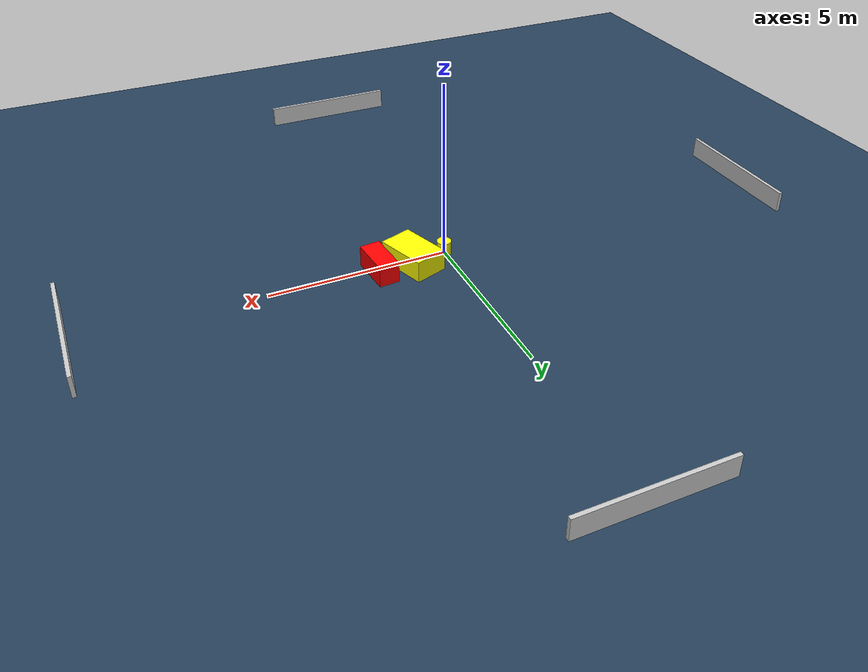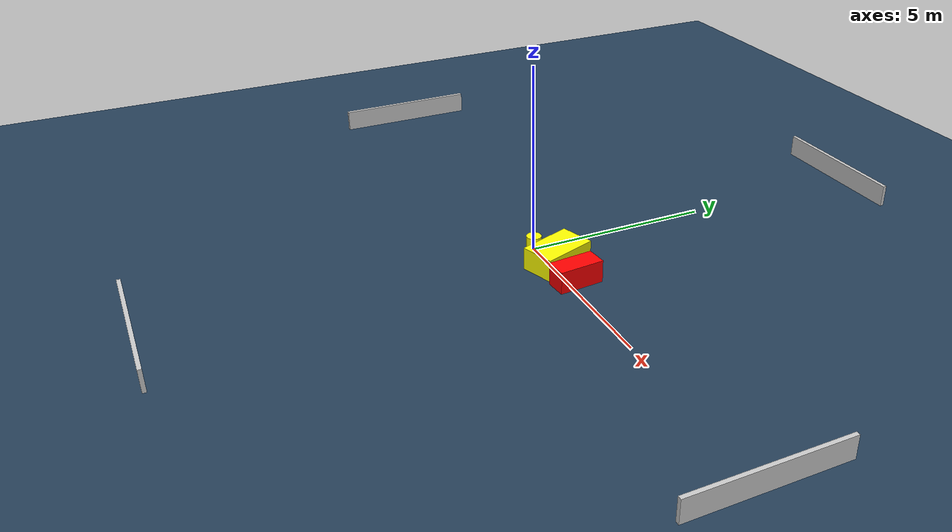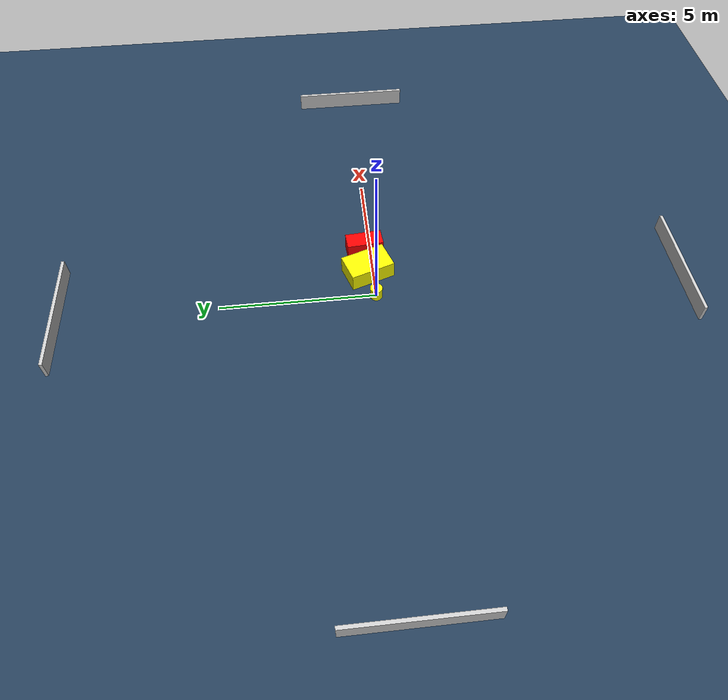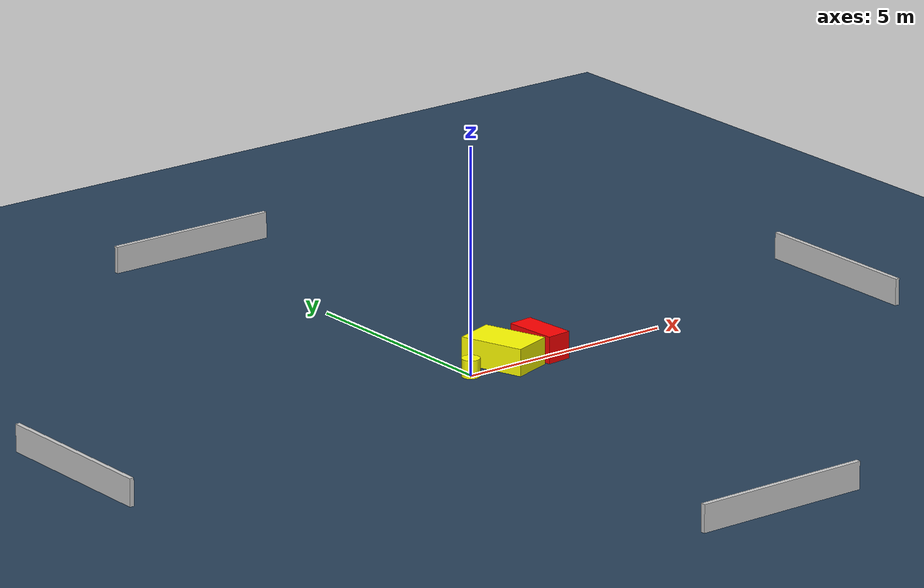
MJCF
<?xml version="1.0" ?>
<mujoco model="generated_environment">
  <option timestep="0.01" integrator="RK4" cone="elliptic"/>
  <default>
    <geom density="1"/>
  </default>
  <asset>
    <texture builtin="gradient" height="3072" name="skybox" rgb1="0.3 0.5 0.7" rgb2="0 0 0" type="skybox" width="512"/>
    <texture builtin="checker" height="300" name="groundplane" rgb1="0.2 0.3 0.4" rgb2="0.1 0.2 0.3" type="2d" width="300"/>
    <material name="groundplane" reflectance="0.2" texrepeat="5 5" texture="groundplane"/>
  </asset>
  <worldbody>
    <light dir="0 0 -1" directional="true" pos="0 0 1.5"/>
    <geom condim="3" friction="0.5 0.005 0.001" material="groundplane" name="floor" pos="0 0 0" size="0 0 0.05" type="plane"/>
    <body name="walls">
      <geom name="wall_1" condim="4" pos="-10.0 0.0 0.3" rgba="0.800000011920929 0.800000011920929 0.800000011920929 1.0" size="0.05 2.0 0.3" type="box"/>
      <geom name="wall_2" condim="4" pos="10.0 0.0 0.3" rgba="0.800000011920929 0.800000011920929 0.800000011920929 1.0" size="0.05 2.0 0.3" type="box"/>
      <geom name="wall_3" condim="4" pos="0.0 -10.0 0.3" rgba="0.800000011920929 0.800000011920929 0.800000011920929 1.0" size="2.0 0.05 0.3" type="box"/>
      <geom name="wall_4" condim="4" pos="0.0 10.0 0.3" rgba="0.800000011920929 0.800000011920929 0.800000011920929 1.0" size="2.0 0.05 0.3" type="box"/>
    </body>
    <body name="robot">
      <joint name="joint_x" type="slide" pos="0 0 0" axis="1 0 0"/>
      <joint name="joint_y" type="slide" pos="0 0 0" axis="0 1 0"/>
      <geom name="robot" type="cylinder" pos="0.0 0.0 0.2" size="0.2 0.2 0.0" mass="5.0" friction="1.0 0.005 0.0001" condim="4" rgba="1.0 1.0 0.0 1.0"/>
    </body>
    <body name="obstacle_1_movable">
      <geom name="obstacle_1_movable" condim="4" pos="0.9990933503180361 0.1795203040965617 0.3" euler="0 0 109.05065619603046" friction="0.0 0.005 0.001" rgba="1.0 1.0 0.0 1.0" size="0.7339080681366934 0.4670993349696811 0.3" type="box" mass="0.1"/>
      <joint type="free"/>
    </body>
    <body name="obstacle_2_static">
      <geom name="obstacle_2_static" condim="4" pos="1.9817981552580364 0.19836172561225612 0.3" euler="0 0 4.880345142098337" friction="0.0 0.005 0.001" rgba="1.0 0.0 0.0 1.0" size="0.283933980768761 0.5979682788137716 0.3" type="box"/>
    </body>
  </worldbody>
  <actuator>
    <motor name="actuator_x" joint="joint_x" gear="1" ctrlrange="-1 1"/>
    <motor name="actuator_y" joint="joint_y" gear="1" ctrlrange="-1 1"/>
  </actuator>
</mujoco>
